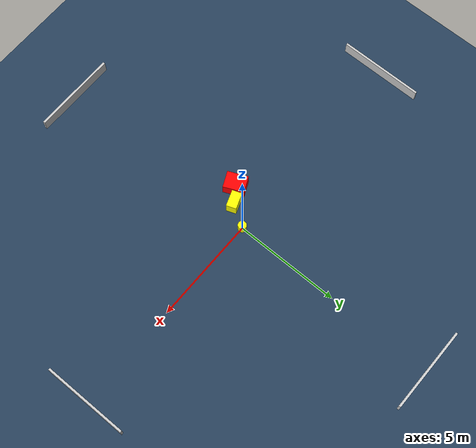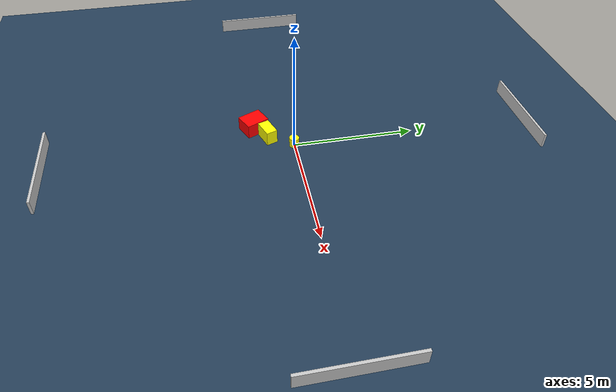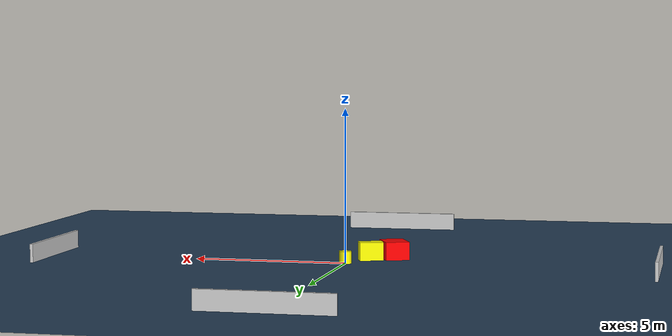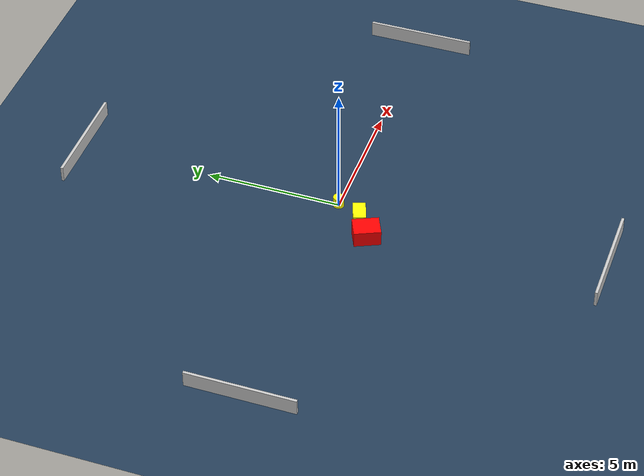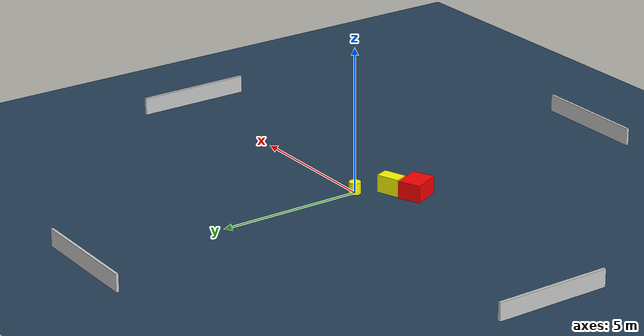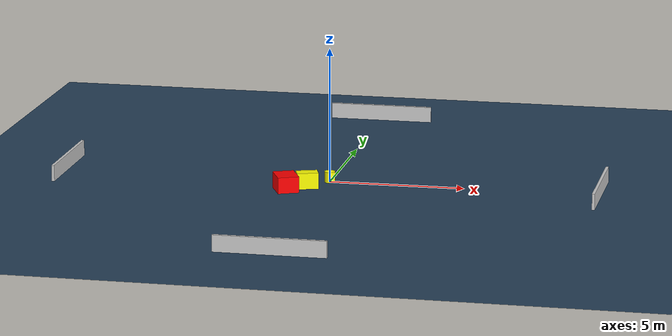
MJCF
<?xml version="1.0" ?>
<mujoco model="generated_environment">
  <option timestep="0.01" integrator="RK4" cone="elliptic"/>
  <default>
    <geom density="1"/>
  </default>
  <asset>
    <texture builtin="gradient" height="3072" name="skybox" rgb1="0.3 0.5 0.7" rgb2="0 0 0" type="skybox" width="512"/>
    <texture builtin="checker" height="300" name="groundplane" rgb1="0.2 0.3 0.4" rgb2="0.1 0.2 0.3" type="2d" width="300"/>
    <material name="groundplane" reflectance="0.2" texrepeat="5 5" texture="groundplane"/>
  </asset>
  <worldbody>
    <light dir="0 0 -1" directional="true" pos="0 0 1.5"/>
    <geom condim="3" friction="0.5 0.005 0.001" material="groundplane" name="floor" pos="0 0 0" size="0 0 0.05" type="plane"/>
    <body name="walls">
      <geom name="wall_1" condim="4" pos="-10.0 0.0 0.3" rgba="0.800000011920929 0.800000011920929 0.800000011920929 1.0" size="0.05 2.0 0.3" type="box"/>
      <geom name="wall_2" condim="4" pos="10.0 0.0 0.3" rgba="0.800000011920929 0.800000011920929 0.800000011920929 1.0" size="0.05 2.0 0.3" type="box"/>
      <geom name="wall_3" condim="4" pos="0.0 -10.0 0.3" rgba="0.800000011920929 0.800000011920929 0.800000011920929 1.0" size="2.0 0.05 0.3" type="box"/>
      <geom name="wall_4" condim="4" pos="0.0 10.0 0.3" rgba="0.800000011920929 0.800000011920929 0.800000011920929 1.0" size="2.0 0.05 0.3" type="box"/>
    </body>
    <body name="robot">
      <joint name="joint_x" type="slide" pos="0 0 0" axis="1 0 0"/>
      <joint name="joint_y" type="slide" pos="0 0 0" axis="0 1 0"/>
      <geom name="robot" type="cylinder" pos="0.0 0.0 0.2" size="0.2 0.2 0.0" mass="5.0" friction="1.0 0.005 0.0001" condim="4" rgba="1.0 1.0 0.0 1.0"/>
    </body>
    <body name="obstacle_1_movable">
      <geom name="obstacle_1_movable" condim="4" pos="-0.638754907094204 -0.9986000103495418 0.3" euler="0 0 289.71760492403376" friction="0.0 0.005 0.001" rgba="1.0 1.0 0.0 1.0" size="0.23565280491567728 0.3932351596471335 0.3" type="box" mass="0.1"/>
      <joint type="free"/>
    </body>
    <body name="obstacle_2_static">
      <geom name="obstacle_2_static" condim="4" pos="-1.3312666099905412 -1.4921646745023882 0.3" euler="0 0 204.50418057300544" friction="0.0 0.005 0.001" rgba="1.0 0.0 0.0 1.0" size="0.3926530762110908 0.4905498991315977 0.3" type="box"/>
    </body>
  </worldbody>
  <actuator>
    <motor name="actuator_x" joint="joint_x" gear="1" ctrlrange="-1 1"/>
    <motor name="actuator_y" joint="joint_y" gear="1" ctrlrange="-1 1"/>
  </actuator>
</mujoco>
